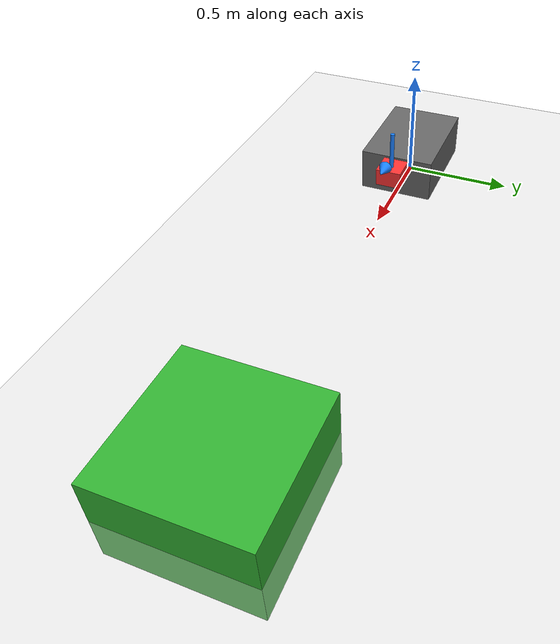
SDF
<?xml version="1.6"?>
<sdf version="1.6">
  <world name="lidar_obstacle_world">
    <gravity>0 0 -9.8</gravity>
    <magnetic_field>6e-06 2.3e-05 -4.2e-05</magnetic_field>

    <include>
      <uri>model://ground_plane</uri>
    </include>

    <include>
      <uri>model://sun</uri>
    </include>

    <model name="lidar_sim_robot">
      <static>true</static>
      <pose>0 0 0 0 0 0</pose>
      <link name="base_link">
        <inertial>
          <mass>5.0</mass>
          <inertia>
            <ixx>0.1</ixx>
            <ixy>0.0</ixy>
            <ixz>0.0</ixz>
            <iyy>0.1</iyy>
            <iyz>0.0</iyz>
            <izz>0.1</izz>
          </inertia>
        </inertial>
        <collision name="base_collision">
          <pose>0 0 0.1 0 0 0</pose>
          <geometry>
            <box>
              <size>0.5 0.35 0.2</size>
            </box>
          </geometry>
        </collision>
        <visual name="base_visual">
          <pose>0 0 0.1 0 0 0</pose>
          <geometry>
            <box>
              <size>0.5 0.35 0.2</size>
            </box>
          </geometry>
          <material>
            <ambient>0.3 0.3 0.3 1</ambient>
            <diffuse>0.4 0.4 0.4 1</diffuse>
          </material>
        </visual>
        <visual name="front_wedge">
          <pose>0.27 0 0.15 0 0 0</pose>
          <geometry>
            <box>
              <size>0.2 0.12 0.08</size>
            </box>
          </geometry>
          <material>
            <ambient>0.9 0.3 0.3 1</ambient>
            <diffuse>1.0 0.2 0.2 1</diffuse>
          </material>
        </visual>
        <visual name="front_arrow_shaft">
          <pose>0.32 0 0.24 0 0 0</pose>
          <geometry>
            <cylinder>
              <radius>0.01</radius>
              <length>0.25</length>
            </cylinder>
          </geometry>
          <material>
            <ambient>0.1 0.5 1.0 1</ambient>
            <diffuse>0.1 0.5 1.0 1</diffuse>
          </material>
        </visual>
        <visual name="front_arrow_head">
          <pose>0.445 0 0.24 0 1.5707 0</pose>
          <geometry>
            <cone>
              <radius>0.03</radius>
              <length>0.07</length>
            </cone>
          </geometry>
          <material>
            <ambient>0.1 0.5 1.0 1</ambient>
            <diffuse>0.1 0.5 1.0 1</diffuse>
          </material>
        </visual>
      </link>
    </model>

    <model name="simple_obstacle">
      <static>true</static>
      <pose>2 0 0 0 0 0</pose>
      <link name="box">
        <collision name="collision">
          <geometry>
            <box>
              <size>0.6 0.6 0.4</size>
            </box>
          </geometry>
        </collision>
        <visual name="visual">
          <geometry>
            <box>
              <size>0.6 0.6 0.4</size>
            </box>
          </geometry>
          <material>
            <ambient>0.2 0.6 0.2 1</ambient>
            <diffuse>0.2 0.7 0.2 1</diffuse>
          </material>
        </visual>
      </link>
    </model>
  </world>
</sdf>
